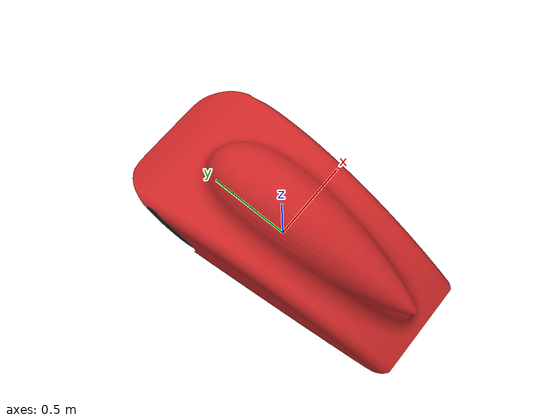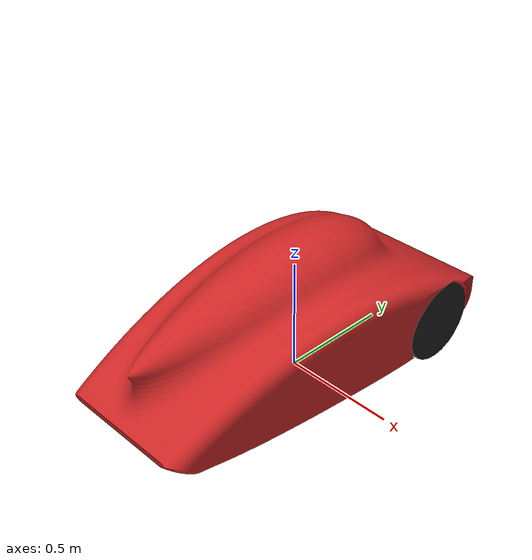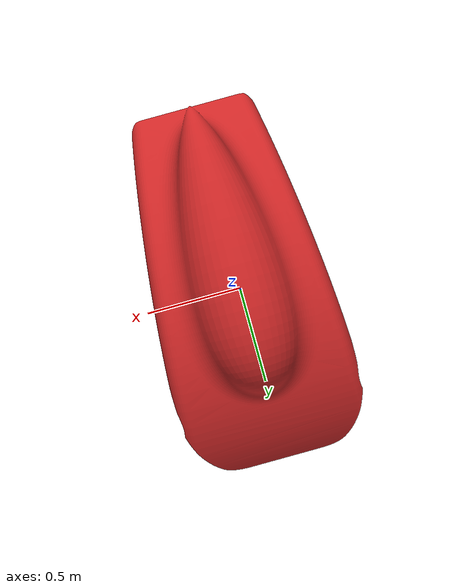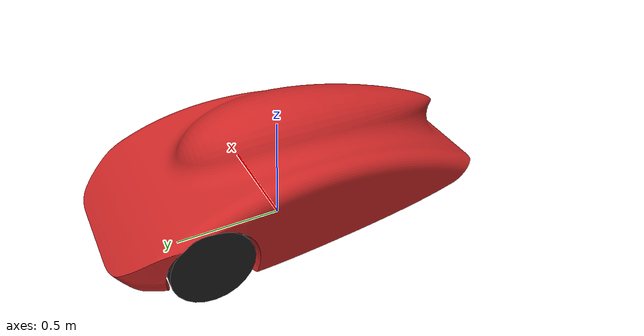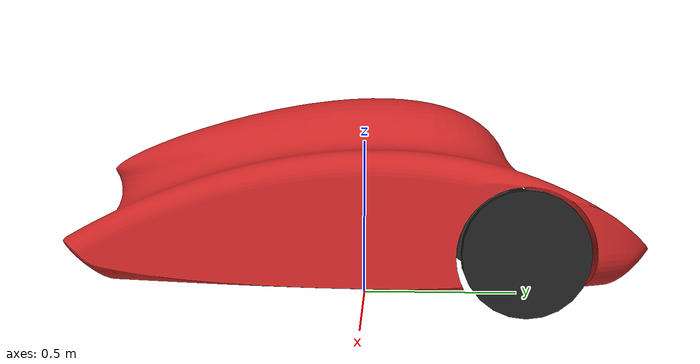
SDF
<?xml version="1.0"?>
<sdf version='1.5'>
  <model name='pars'>
    <static>true</static>
    <!-- Pars body -->
    <link name='base_link'>
      <pose>0 0 0 0 0 0</pose>
      <inertial>
        <pose>0 0 0 0 0 0</pose>
        <mass>1.47</mass>
        <inertia>
          <ixx>0.011</ixx>
          <ixy>0</ixy>
          <ixz>0</ixz>
          <iyy>0.015</iyy>
          <iyz>0</iyz>
          <izz>0.021</izz>
        </inertia>
      </inertial>
      <collision name='base_link_inertia_collision'>
        <pose>0 -0.03 0.36 0 0 0</pose>
        <geometry>
          <box>
            <size>0.8 1.75 0.56</size>
          </box>
        </geometry>
        <surface>
          <contact>
            <ode>
              <min_depth>0.001</min_depth>
              <max_vel>0</max_vel>
            </ode>
          </contact>
          <friction>
            <ode/>
          </friction>
        </surface>
      </collision>
      <visual name='base_link_inertia_visual'>
        <pose>0 0 0.07 0 0 0</pose>
        <geometry>
          <mesh>
            <scale>0.1 0.1 0.1</scale>
            <uri>model://pars/meshes/pars.stl</uri>
          </mesh>
        </geometry>
        <material>
          <script>
            <name>Gazebo/Red</name>
            <uri>file://media/materials/scripts/gazebo.material</uri>
          </script>
        </material>
      </visual>
      <gravity>1</gravity>
      <velocity_decay/>
      <self_collide>0</self_collide>
    </link>

    <link name="left_wheel">
        <pose>-0.37 0.46 0.19 0 1.5707 0</pose>
        <collision name="collision">
          <geometry>
            <cylinder>
              <radius>.18</radius>
              <length>.05</length>
            </cylinder>
          </geometry>
        </collision>
        <visual name="visual">
          <geometry>
            <cylinder>
              <radius>.18</radius>
              <length>.05</length>
            </cylinder>
          </geometry>
          <material>
            <script>
              <name>Gazebo/Black</name>
              <uri>file://media/materials/scripts/gazebo.material</uri>
            </script>
          </material>
        </visual>
    </link>

    <link name="right_wheel">
        <pose>0.37 0.46 0.19 0 1.5707 0</pose>
        <collision name="collision">
          <geometry>
            <cylinder>
              <radius>.18</radius>
              <length>.05</length>
            </cylinder>
          </geometry>
        </collision>
        <visual name="visual">
          <geometry>
            <cylinder>
              <radius>.18</radius>
              <length>.05</length>
            </cylinder>
          </geometry>
          <material>
            <script>
              <name>Gazebo/Black</name>
              <uri>file://media/materials/scripts/gazebo.material</uri>
            </script>
          </material>
        </visual>
    </link>

  </model>
</sdf>
